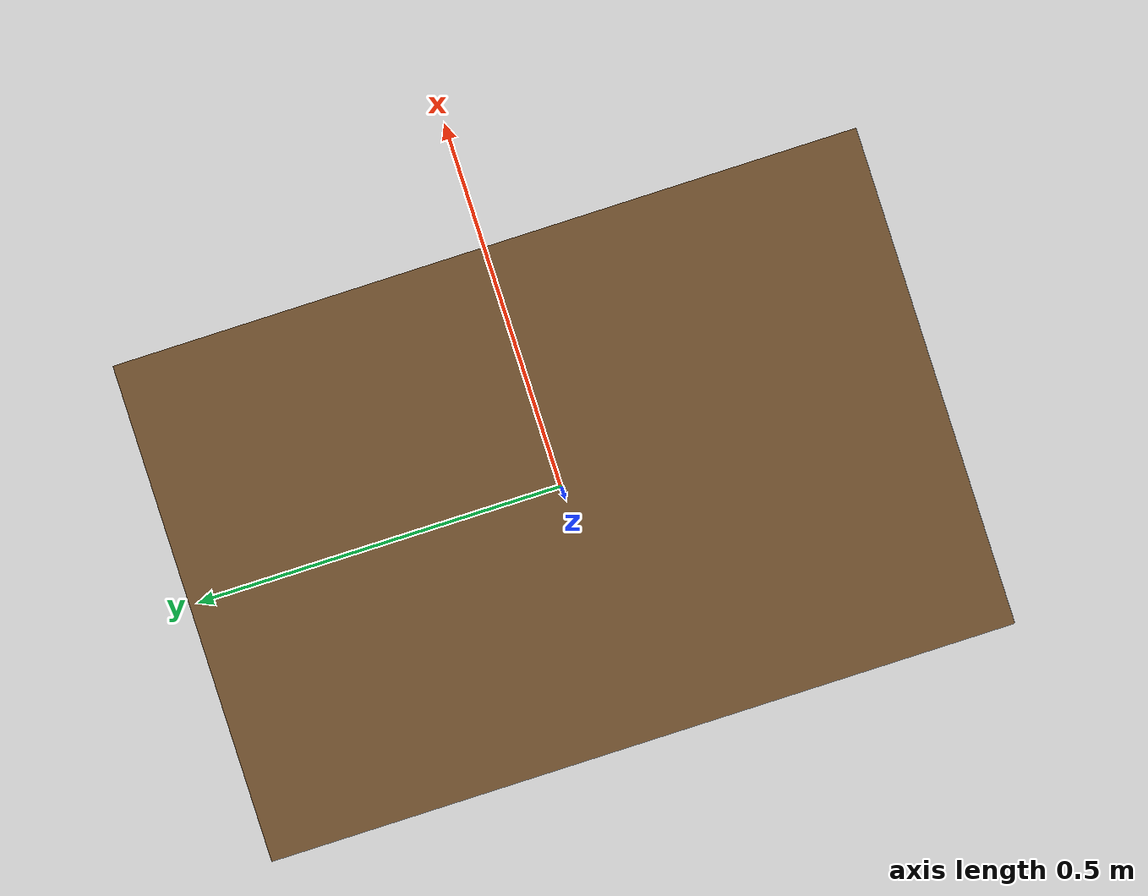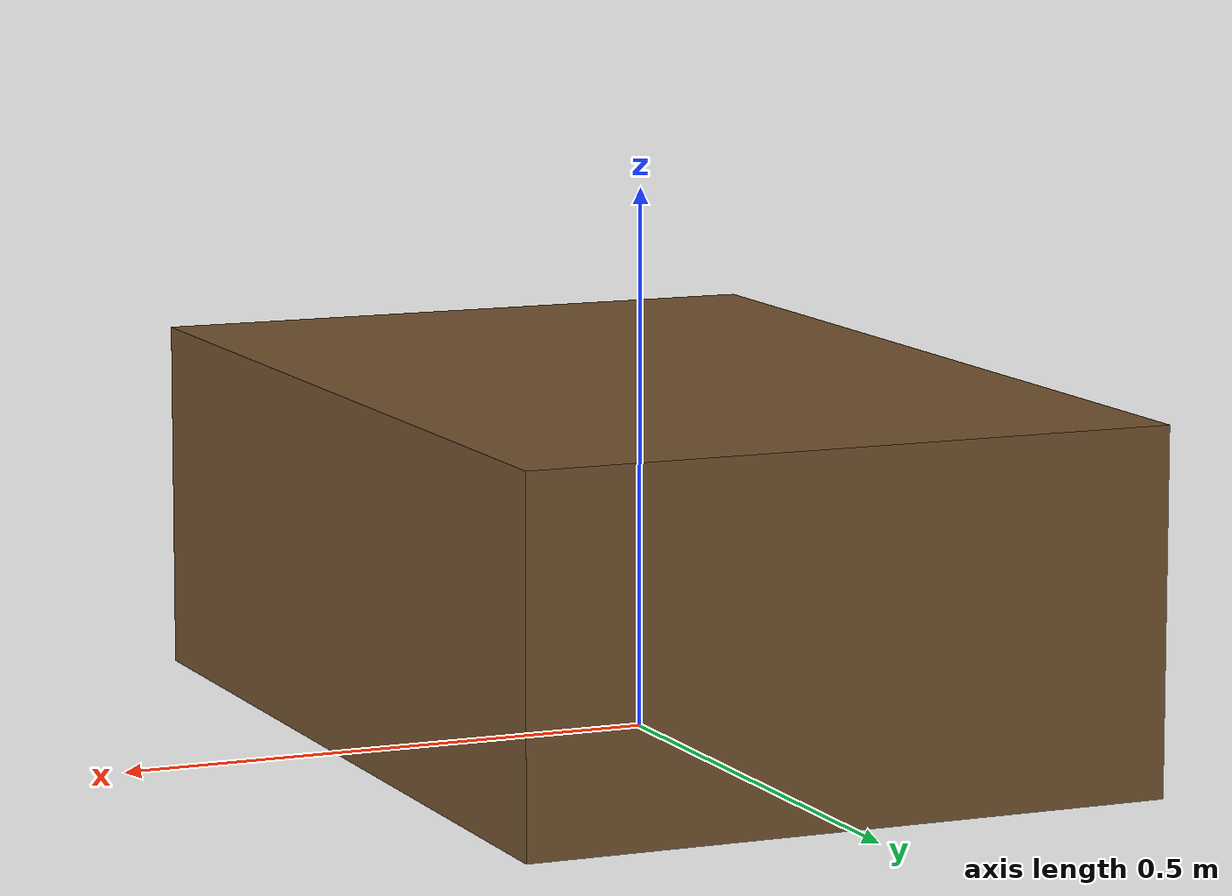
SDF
<?xml version="1.0"?>
<sdf version="1.9">
  <!-- Table top surface sits at z = 0.33 when the model is placed at
       ground level. -->
  <model name="typing_table">
    <static>true</static>
    <link name="top">
      <pose>0 0 0.165 0 0 0</pose>
      <collision name="collision">
        <geometry>
          <box><size>0.6 0.9 0.33</size></box>
        </geometry>
      </collision>
      <visual name="visual">
        <geometry>
          <box><size>0.6 0.9 0.33</size></box>
        </geometry>
        <material>
          <ambient>0.45 0.32 0.18 1</ambient>
          <diffuse>0.45 0.32 0.18 1</diffuse>
        </material>
      </visual>
    </link>
  </model>
</sdf>
